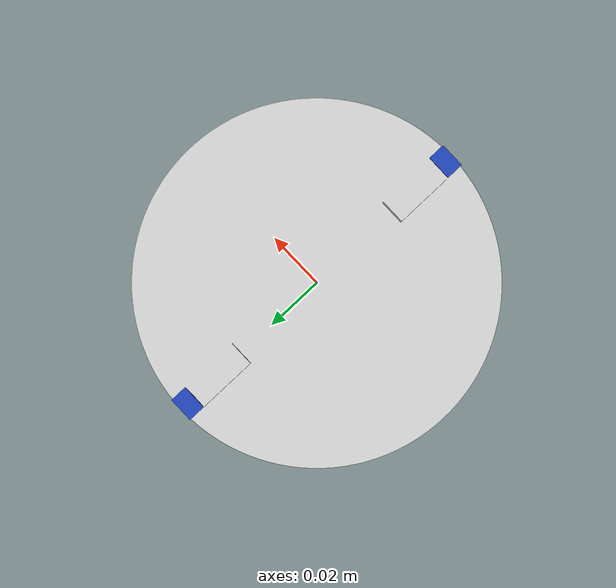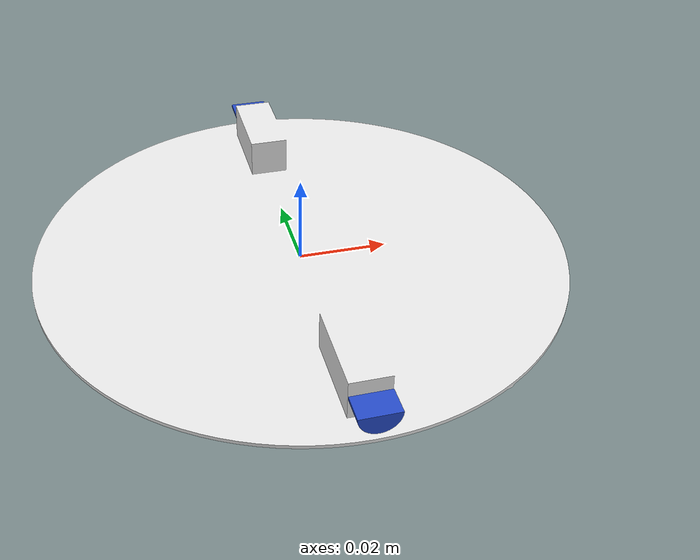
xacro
<?xml version="1.0"?>
<robot xmlns:xacro="http://www.ros.org/wiki/xacro" name="microrobot">

    <link name="base_link">
    </link>

    <joint name="platform_joint" type="fixed">
        <parent link="base_link"></parent>
        <child link="platform_link"></child>
    </joint>

    <!-- PLATFORM LINK -->

    <link name="platform_link">

        <inertial>
            <mass value="122"/>
            <inertia ixx="0.144"  ixy="0"  ixz="0" iyy="0.083" iyz="0" izz="0.225" />
        </inertial>

        <visual>
            <geometry>
                <mesh filename="package://microrobot/meshes/large_platform_mesh_001.stl"/>
            </geometry>
        </visual>

        <collision>
            <geometry>
                <mesh filename="package://microrobot/meshes/large_platform_mesh_001.stl"/>
            </geometry>
        </collision>

    </link>

    <gazebo reference="platform_link">
        <mu1 value="0.4"/>
        <mu2 value="0.4"/>
        <material>Gazebo/White</material>
    </gazebo>

    <!-- LEFT ECCENTER LINK -->

    <joint name="platform_to_left_eccenter_joint" type="continuous">
        <origin xyz="0 0.057 0.008" rpy="0 0 0"/>
        <parent link="platform_link"/>
        <child link="left_eccenter_link"/>
        <axis xyz="0 1 0"/>
        <dynamics damping="0.0005" friction="0.0"/>
    </joint>

    <transmission name="right_motor_transmition">
    <type>transmission_interface/SimpleTransmission</type>

        <joint name="platform_to_left_eccenter_joint">
            <hardwareInterface>EffortJointInterface</hardwareInterface>
        </joint>

        <actuator name="r_motor">
            <hardwareInterface>EffortJointInterface</hardwareInterface>
            <mechanicalReduction>1</mechanicalReduction>
        </actuator>

    </transmission>

    <link name="left_eccenter_link">

        <inertial>
            <origin xyz="0 0 -0.002" rpy="0 0 0"/>
            <mass value="1.825"/>
            <inertia ixx="7.94e-06"  ixy="0"  ixz="0" iyy="1.15e-05" iyz="0" izz="1.431e-05" />
        </inertial>

        <visual>
            <origin xyz="0 0 -0.002" rpy="0 0 0"/>
            <geometry>
                <mesh filename="package://microrobot/meshes/large_eccenter_mesh_001.stl"/>
            </geometry>
        </visual>

        <collision>
            <origin xyz="0 0 -0.002" rpy="0 0 0"/>
            <geometry>
                <mesh filename="package://microrobot/meshes/large_eccenter_mesh_001.stl"/>
            </geometry>
        </collision>

    </link>

    <gazebo reference="left_eccenter_link">
        <material>Gazebo/Blue</material>
    </gazebo>

    <!-- RIGHT ECCENTER LINK -->

    <joint name="platform_to_right_eccenter_joint" type="continuous">
        <origin xyz="0 -0.057 0.008" rpy="0 0 -3.14"/>
        <parent link="platform_link"/>
        <child link="right_eccenter_link"/>
        <axis xyz="0 1 0"/>
        <dynamics damping="0.0005" friction="0.0"/>
    </joint>

    <transmission name="left_motor_transmition">
    <type>transmission_interface/SimpleTransmission</type>

        <joint name="platform_to_right_eccenter_joint">
            <hardwareInterface>EffortJointInterface</hardwareInterface>
        </joint>

        <actuator name="l_motor">
            <hardwareInterface>EffortJointInterface</hardwareInterface>
            <mechanicalReduction>1</mechanicalReduction>
        </actuator>

    </transmission>

    <link name="right_eccenter_link">

        <inertial>
            <origin xyz="0 0 -0.002" rpy="0 0 0"/>
            <mass value="1.825"/>
            <inertia ixx="7.94e-06"  ixy="0"  ixz="0" iyy="1.15e-05" iyz="0" izz="1.431e-05" />
        </inertial>

        <visual>
            <origin xyz="0 0 -0.002" rpy="0 0 0"/>
            <geometry>
                <mesh filename="package://microrobot/meshes/large_eccenter_mesh_001.stl"/>
            </geometry>
        </visual>

        <collision>
            <origin xyz="0 0 -0.002" rpy="0 0 0"/>
            <geometry>
                <mesh filename="package://microrobot/meshes/large_eccenter_mesh_001.stl"/>
            </geometry>
        </collision>

    </link>

    <gazebo reference="right_eccenter_link">
        <material>Gazebo/Blue</material>
    </gazebo>

</robot>
